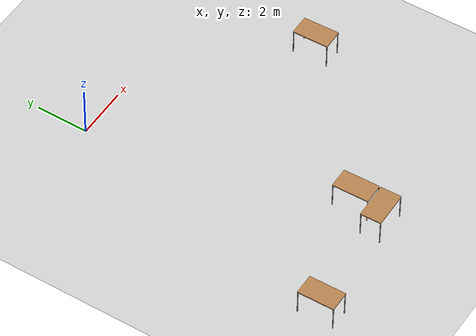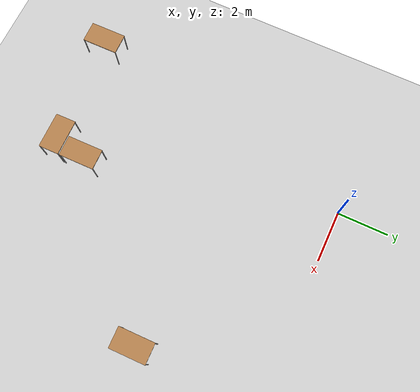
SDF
<sdf version="1.6">
 <world name="default">
  <model name="ground_plane">
   <static>1</static>
   <link name="link">
    <collision name="collision">
     <geometry><plane><normal>0 0 1</normal><size>100 100</size></plane></geometry>
     <surface><friction><ode><mu>100</mu><mu2>50</mu2></ode></friction></surface>
    </collision>
    <visual name="visual">
     <cast_shadows>0</cast_shadows>
     <geometry><plane><normal>0 0 1</normal><size>100 100</size></plane></geometry>
     <material>
      <script><uri>file://media/materials/scripts/gazebo.material</uri><name>Gazebo/Grey</name></script>
     </material>
    </visual>
   </link>
  </model>
  <model name="table_0_clone_clone_clone_0_clone_clone_0">
   <static>0</static>
   <link name="link">
    <collision name="surface">
     <pose>0 0 1 0 -0 0</pose>
     <geometry><box><size>1.5 0.8 0.03</size></box></geometry>
     <surface><friction><ode><mu>0.6</mu><mu2>0.6</mu2></ode></friction></surface>
    </collision>
    <visual name="visual1">
     <pose>0 0 1 0 -0 0</pose>
     <geometry><box><size>1.4 0.8 0.04</size></box></geometry>
     <material>
      <script><uri>file://media/materials/scripts/gazebo.material</uri><name>Gazebo/Wood</name></script>
     </material>
    </visual>
    <collision name="front_left_leg">
     <pose>0.68 0.38 0.5 0 -0 0</pose>
     <geometry><cylinder><radius>0.02</radius><length>1</length></cylinder></geometry>
    </collision>
    <visual name="front_left_leg">
     <pose>0.68 0.38 0.5 0 -0 0</pose>
     <geometry><cylinder><radius>0.02</radius><length>1</length></cylinder></geometry>
     <material>
      <script><uri>file://media/materials/scripts/gazebo.material</uri><name>Gazebo/Grey</name></script>
     </material>
    </visual>
    <collision name="front_right_leg">
     <pose>0.68 -0.38 0.5 0 -0 0</pose>
     <geometry><cylinder><radius>0.02</radius><length>1</length></cylinder></geometry>
    </collision>
    <visual name="front_right_leg">
     <pose>0.68 -0.38 0.5 0 -0 0</pose>
     <geometry><cylinder><radius>0.02</radius><length>1</length></cylinder></geometry>
     <material>
      <script><uri>file://media/materials/scripts/gazebo.material</uri><name>Gazebo/Grey</name></script>
     </material>
    </visual>
    <collision name="back_right_leg">
     <pose>-0.68 -0.38 0.5 0 -0 0</pose>
     <geometry><cylinder><radius>0.02</radius><length>1</length></cylinder></geometry>
    </collision>
    <visual name="back_right_leg">
     <pose>-0.68 -0.38 0.5 0 -0 0</pose>
     <geometry><cylinder><radius>0.02</radius><length>1</length></cylinder></geometry>
     <material>
      <script><uri>file://media/materials/scripts/gazebo.material</uri><name>Gazebo/Grey</name></script>
     </material>
    </visual>
    <collision name="back_left_leg">
     <pose>-0.68 0.38 0.5 0 -0 0</pose>
     <geometry><cylinder><radius>0.02</radius><length>1</length></cylinder></geometry>
    </collision>
    <visual name="back_left_leg">
     <pose>-0.68 0.38 0.5 0 -0 0</pose>
     <geometry><cylinder><radius>0.02</radius><length>1</length></cylinder></geometry>
     <material>
      <script><uri>file://media/materials/scripts/gazebo.material</uri><name>Gazebo/Grey</name></script>
     </material>
    </visual>
    <inertial>
     <inertia><ixx>1</ixx><ixy>0</ixy><ixz>0</ixz><iyy>1</iyy><iyz>0</iyz><izz>1</izz></inertia>
     <mass>1</mass>
    </inertial>
   </link>
   <pose>7.52497 -4.72562 -1e-06 0 1e-06 -1.55435</pose>
  </model>
  <model name="table_0_clone_clone_clone_0_clone_clone_1_clone">
   <static>0</static>
   <link name="link">
    <collision name="surface">
     <pose>0 0 1 0 -0 0</pose>
     <geometry><box><size>1.5 0.8 0.03</size></box></geometry>
     <surface><friction><ode><mu>0.6</mu><mu2>0.6</mu2></ode></friction></surface>
    </collision>
    <visual name="visual1">
     <pose>0 0 1 0 -0 0</pose>
     <geometry><box><size>1.4 0.8 0.04</size></box></geometry>
     <material>
      <script><uri>file://media/materials/scripts/gazebo.material</uri><name>Gazebo/Wood</name></script>
     </material>
    </visual>
    <collision name="front_left_leg">
     <pose>0.68 0.38 0.5 0 -0 0</pose>
     <geometry><cylinder><radius>0.02</radius><length>1</length></cylinder></geometry>
    </collision>
    <visual name="front_left_leg">
     <pose>0.68 0.38 0.5 0 -0 0</pose>
     <geometry><cylinder><radius>0.02</radius><length>1</length></cylinder></geometry>
     <material>
      <script><uri>file://media/materials/scripts/gazebo.material</uri><name>Gazebo/Grey</name></script>
     </material>
    </visual>
    <collision name="front_right_leg">
     <pose>0.68 -0.38 0.5 0 -0 0</pose>
     <geometry><cylinder><radius>0.02</radius><length>1</length></cylinder></geometry>
    </collision>
    <visual name="front_right_leg">
     <pose>0.68 -0.38 0.5 0 -0 0</pose>
     <geometry><cylinder><radius>0.02</radius><length>1</length></cylinder></geometry>
     <material>
      <script><uri>file://media/materials/scripts/gazebo.material</uri><name>Gazebo/Grey</name></script>
     </material>
    </visual>
    <collision name="back_right_leg">
     <pose>-0.68 -0.38 0.5 0 -0 0</pose>
     <geometry><cylinder><radius>0.02</radius><length>1</length></cylinder></geometry>
    </collision>
    <visual name="back_right_leg">
     <pose>-0.68 -0.38 0.5 0 -0 0</pose>
     <geometry><cylinder><radius>0.02</radius><length>1</length></cylinder></geometry>
     <material>
      <script><uri>file://media/materials/scripts/gazebo.material</uri><name>Gazebo/Grey</name></script>
     </material>
    </visual>
    <collision name="back_left_leg">
     <pose>-0.68 0.38 0.5 0 -0 0</pose>
     <geometry><cylinder><radius>0.02</radius><length>1</length></cylinder></geometry>
    </collision>
    <visual name="back_left_leg">
     <pose>-0.68 0.38 0.5 0 -0 0</pose>
     <geometry><cylinder><radius>0.02</radius><length>1</length></cylinder></geometry>
     <material>
      <script><uri>file://media/materials/scripts/gazebo.material</uri><name>Gazebo/Grey</name></script>
     </material>
    </visual>
    <inertial>
     <inertia><ixx>1</ixx><ixy>0</ixy><ixz>0</ixz><iyy>1</iyy><iyz>0</iyz><izz>1</izz></inertia>
     <mass>1</mass>
    </inertial>
   </link>
   <pose>2.15506 -9.60985 -3e-06 0 4e-06 -1.55742</pose>
  </model>
  <model name="table_0_clone_clone_clone_clone_clone_clone">
   <static>0</static>
   <link name="link">
    <collision name="surface">
     <pose>0 0 1 0 -0 0</pose>
     <geometry><box><size>1.5 0.8 0.03</size></box></geometry>
     <surface><friction><ode><mu>0.6</mu><mu2>0.6</mu2></ode></friction></surface>
    </collision>
    <visual name="visual1">
     <pose>0 0 1 0 -0 0</pose>
     <geometry><box><size>1.4 0.8 0.04</size></box></geometry>
     <material>
      <script><uri>file://media/materials/scripts/gazebo.material</uri><name>Gazebo/Wood</name></script>
     </material>
    </visual>
    <collision name="front_left_leg">
     <pose>0.68 0.38 0.5 0 -0 0</pose>
     <geometry><cylinder><radius>0.02</radius><length>1</length></cylinder></geometry>
    </collision>
    <visual name="front_left_leg">
     <pose>0.68 0.38 0.5 0 -0 0</pose>
     <geometry><cylinder><radius>0.02</radius><length>1</length></cylinder></geometry>
     <material>
      <script><uri>file://media/materials/scripts/gazebo.material</uri><name>Gazebo/Grey</name></script>
     </material>
    </visual>
    <collision name="front_right_leg">
     <pose>0.68 -0.38 0.5 0 -0 0</pose>
     <geometry><cylinder><radius>0.02</radius><length>1</length></cylinder></geometry>
    </collision>
    <visual name="front_right_leg">
     <pose>0.68 -0.38 0.5 0 -0 0</pose>
     <geometry><cylinder><radius>0.02</radius><length>1</length></cylinder></geometry>
     <material>
      <script><uri>file://media/materials/scripts/gazebo.material</uri><name>Gazebo/Grey</name></script>
     </material>
    </visual>
    <collision name="back_right_leg">
     <pose>-0.68 -0.38 0.5 0 -0 0</pose>
     <geometry><cylinder><radius>0.02</radius><length>1</length></cylinder></geometry>
    </collision>
    <visual name="back_right_leg">
     <pose>-0.68 -0.38 0.5 0 -0 0</pose>
     <geometry><cylinder><radius>0.02</radius><length>1</length></cylinder></geometry>
     <material>
      <script><uri>file://media/materials/scripts/gazebo.material</uri><name>Gazebo/Grey</name></script>
     </material>
    </visual>
    <collision name="back_left_leg">
     <pose>-0.68 0.38 0.5 0 -0 0</pose>
     <geometry><cylinder><radius>0.02</radius><length>1</length></cylinder></geometry>
    </collision>
    <visual name="back_left_leg">
     <pose>-0.68 0.38 0.5 0 -0 0</pose>
     <geometry><cylinder><radius>0.02</radius><length>1</length></cylinder></geometry>
     <material>
      <script><uri>file://media/materials/scripts/gazebo.material</uri><name>Gazebo/Grey</name></script>
     </material>
    </visual>
    <inertial>
     <inertia><ixx>1</ixx><ixy>0</ixy><ixz>0</ixz><iyy>1</iyy><iyz>0</iyz><izz>1</izz></inertia>
     <mass>1</mass>
    </inertial>
   </link>
   <pose>1.86676 -10.7638 -0.001632 0 -6e-06 0.013372</pose>
  </model>
  <model name="table_0_clone_clone_clone_0_clone_clone_1_clone_clone">
   <static>0</static>
   <link name="link">
    <collision name="surface">
     <pose>0 0 1 0 -0 0</pose>
     <geometry><box><size>1.5 0.8 0.03</size></box></geometry>
     <surface><friction><ode><mu>0.6</mu><mu2>0.6</mu2></ode></friction></surface>
    </collision>
    <visual name="visual1">
     <pose>0 0 1 0 -0 0</pose>
     <geometry><box><size>1.4 0.8 0.04</size></box></geometry>
     <material>
      <script><uri>file://media/materials/scripts/gazebo.material</uri><name>Gazebo/Wood</name></script>
     </material>
    </visual>
    <collision name="front_left_leg">
     <pose>0.68 0.38 0.5 0 -0 0</pose>
     <geometry><cylinder><radius>0.02</radius><length>1</length></cylinder></geometry>
    </collision>
    <visual name="front_left_leg">
     <pose>0.68 0.38 0.5 0 -0 0</pose>
     <geometry><cylinder><radius>0.02</radius><length>1</length></cylinder></geometry>
     <material>
      <script><uri>file://media/materials/scripts/gazebo.material</uri><name>Gazebo/Grey</name></script>
     </material>
    </visual>
    <collision name="front_right_leg">
     <pose>0.68 -0.38 0.5 0 -0 0</pose>
     <geometry><cylinder><radius>0.02</radius><length>1</length></cylinder></geometry>
    </collision>
    <visual name="front_right_leg">
     <pose>0.68 -0.38 0.5 0 -0 0</pose>
     <geometry><cylinder><radius>0.02</radius><length>1</length></cylinder></geometry>
     <material>
      <script><uri>file://media/materials/scripts/gazebo.material</uri><name>Gazebo/Grey</name></script>
     </material>
    </visual>
    <collision name="back_right_leg">
     <pose>-0.68 -0.38 0.5 0 -0 0</pose>
     <geometry><cylinder><radius>0.02</radius><length>1</length></cylinder></geometry>
    </collision>
    <visual name="back_right_leg">
     <pose>-0.68 -0.38 0.5 0 -0 0</pose>
     <geometry><cylinder><radius>0.02</radius><length>1</length></cylinder></geometry>
     <material>
      <script><uri>file://media/materials/scripts/gazebo.material</uri><name>Gazebo/Grey</name></script>
     </material>
    </visual>
    <collision name="back_left_leg">
     <pose>-0.68 0.38 0.5 0 -0 0</pose>
     <geometry><cylinder><radius>0.02</radius><length>1</length></cylinder></geometry>
    </collision>
    <visual name="back_left_leg">
     <pose>-0.68 0.38 0.5 0 -0 0</pose>
     <geometry><cylinder><radius>0.02</radius><length>1</length></cylinder></geometry>
     <material>
      <script><uri>file://media/materials/scripts/gazebo.material</uri><name>Gazebo/Grey</name></script>
     </material>
    </visual>
    <inertial>
     <inertia><ixx>1</ixx><ixy>0</ixy><ixz>0</ixz><iyy>1</iyy><iyz>0</iyz><izz>1</izz></inertia>
     <mass>1</mass>
    </inertial>
   </link>
   <pose>-2.44644 -11.0609 0.000557 -0.001393 -0 -1.56147</pose>
  </model>
 </world>
</sdf>
